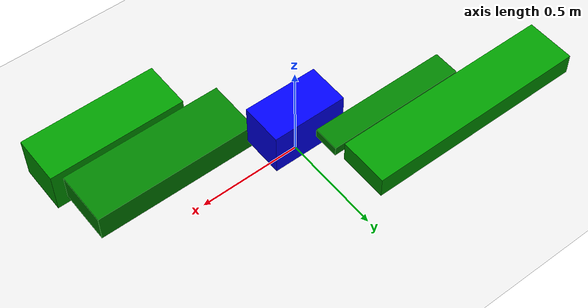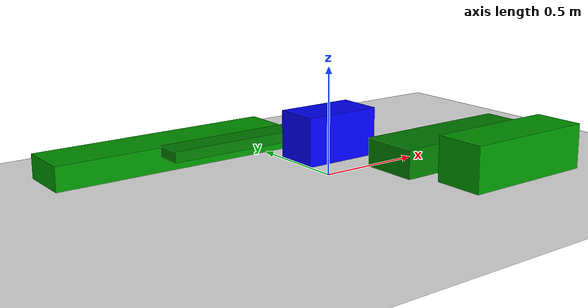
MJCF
<mujoco>
    <worldbody>
    <light diffuse=".5 .5 .5" pos="0 0 3" dir="0 0 -1"/>
    <geom type="plane" size="5 5 0.1" rgba=".9 0.9 0.9 1"/>
    <body name="main body" pos="0 0 .2">
        <joint type="free"/>
        <geom type="box" size="0.1823618432185498 0.10347852472478945 0.10960618824937188" rgba="0 0 1 1" mass="1"/>
        <site name="marker" pos="0 0 0" size="0.05"/>
        <site name="robot_center" pos="0 0 0" size="0.01"/>
        <body name="left_leg1" pos="-0.38 0.16803071267335523 -0.016055586775445555">
            <joint name="left_leg1_joint" type="hinge" axis="0 1 0" pos="0 0 0"/>
            <geom type="box" size="0.3458965063515525 0.06455218794856579 0.024025585299729122" rgba="0 .5 0 1" mass="1"/>
            <body name="left_leg2" pos="-0.2607771055325429 0.18717595118401498 -0.04">
                <joint name="left_leg2_joint" type="hinge" axis="0 1 0" pos="0 0 0"/>
                <geom type="box" size="0.5553004084121641 0.12262376323544917 0.05415659543259784" rgba="0 .6 0 1" mass="1"/>
            </body>
        </body>
        <body name="right_leg1" pos="0.5466207732215939 -0.23913327762903053 -0.09338978554123224">
            <joint name="right_leg1_joint" type="hinge" axis="0 1 0" pos="0 0 0"/>
            <geom type="box" size="0.39580820314313025 0.13565475290424106 0.06732011548997069" rgba="0 .5 0 1" mass="1"/>
            <body name="right_leg2" pos="0.1150039822423069 -0.2574831450841506 -0.012785657810621777">
                <joint name="right_leg2_joint" type="hinge" axis="0 1 0" pos="0 0 0"/>
                <geom type="box" size="0.3347364345708415 0.12182839217990957 0.11882258811051258" rgba="0 .6 0 1" mass="1"/>
            </body>
        </body>
    </body>
    </worldbody>
    <sensor>
        <framepos objtype="site" objname="marker"/>
        <velocimeter name="robot_velocity" site="robot_center"/>
    </sensor>
    <actuator>
        <position joint="left_leg1_joint" kp="10"/>
        <position joint="left_leg2_joint" kp="10"/>
        <position joint="right_leg1_joint" kp="10"/>
        <position joint="right_leg2_joint" kp="10"/>
    </actuator>
</mujoco>
